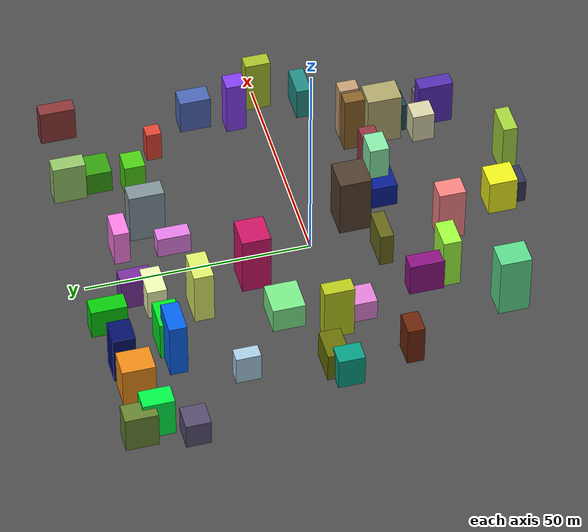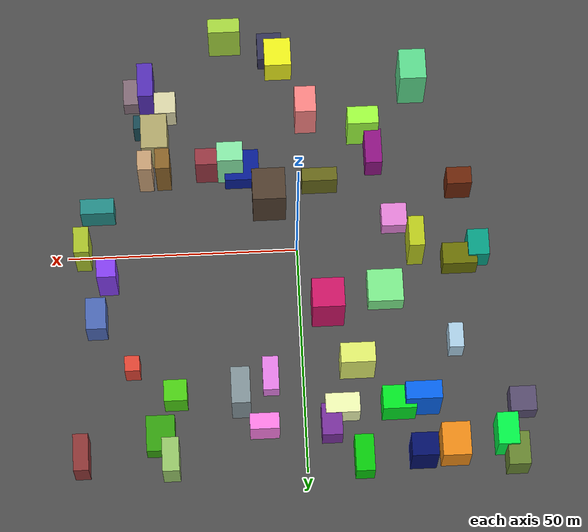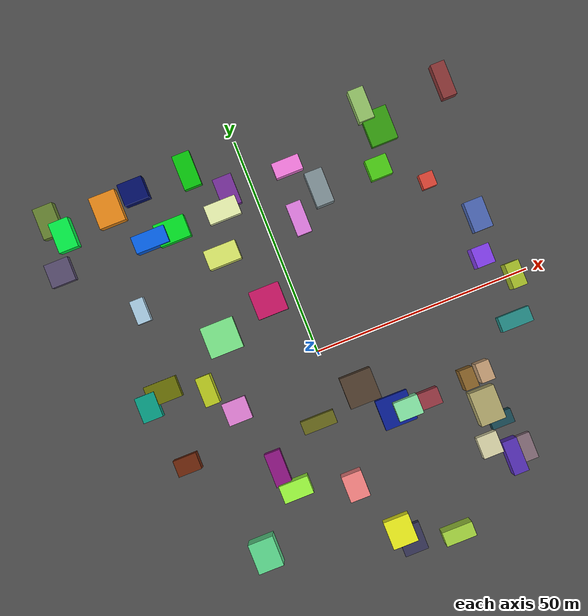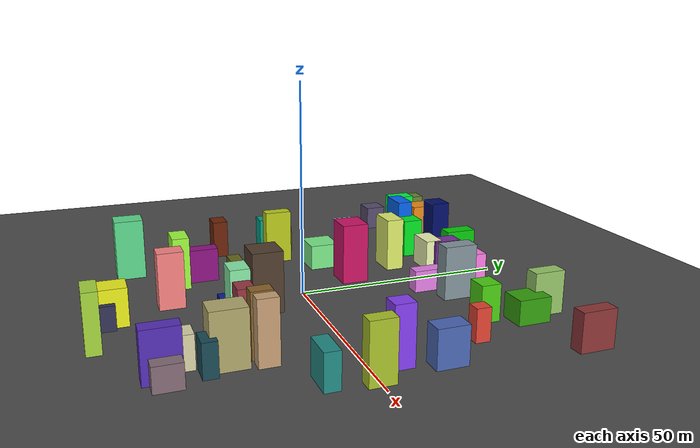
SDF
<?xml version="1.0" ?>
<sdf version="1.8">
  <world name="urban_city">
    <physics name="1ms" type="ignored">
      <max_step_size>0.001</max_step_size>
      <real_time_factor>1.0</real_time_factor>
    </physics>
    <plugin filename="gz-sim-physics-system" name="gz::sim::systems::Physics"></plugin>
    <plugin filename="gz-sim-user-commands-system" name="gz::sim::systems::UserCommands"></plugin>
    <plugin filename="gz-sim-scene-broadcaster-system" name="gz::sim::systems::SceneBroadcaster"></plugin>
    <plugin filename="gz-sim-sensors-system" name="gz::sim::systems::Sensors">
        <render_engine>ogre2</render_engine>
    </plugin>

    <light type="directional" name="sun">
      <cast_shadows>true</cast_shadows>
      <pose>0 0 10 0 0 0</pose>
      <diffuse>0.8 0.8 0.8 1</diffuse>
      <specular>0.2 0.2 0.2 1</specular>
      <direction>-0.5 0.1 -0.9</direction>
    </light>

    <model name="ground_plane">
      <static>true</static>
      <link name="link">
        <collision name="collision">
          <geometry><plane><normal>0 0 1</normal><size>200 200</size></plane></geometry>
          <surface>
            <friction>
              <ode>
                <mu>100</mu>
                <mu2>50</mu2>
              </ode>
            </friction>
          </surface>
        </collision>
        <visual name="visual">
          <geometry><plane><normal>0 0 1</normal><size>200 200</size></plane></geometry>
          <material><ambient>0.3 0.3 0.3 1</ambient><diffuse>0.3 0.3 0.3 1</diffuse></material>
        </visual>
      </link>
    </model>

    <model name="building_0">
      <static>true</static>
      <pose>36.51692773470036 26.25763778981984 3.7656761505585488 0 0 0</pose>
      <link name="link">
        <collision name="collision">
          <geometry><box><size>3.2139395020935138 3.3728820936326533 7.5313523011170975</size></box></geometry>
        </collision>
        <visual name="visual">
          <geometry><box><size>3.2139395020935138 3.3728820936326533 7.5313523011170975</size></box></geometry>
          <material>
            <ambient>0.43112650502192007 0.2584102852 0.17575173589781012 1</ambient>
            <diffuse>0.8811917418396208 0.26678448036901026 0.20276711819678073 1</diffuse>
          </material>
        </visual>
      </link>
    </model>

    <model name="building_1">
      <static>true</static>
      <pose>46.48683743717173 -0.12521765545178454 6.601397617739167 0 0 0</pose>
      <link name="link">
        <collision name="collision">
          <geometry><box><size>3.2581205137002964 5.743415095905071 13.202795235478334</size></box></geometry>
        </collision>
        <visual name="visual">
          <geometry><box><size>3.2581205137002964 5.743415095905071 13.202795235478334</size></box></geometry>
          <material>
            <ambient>0.6504467767603512 0.18006312216125753 0.9953582651852256 1</ambient>
            <diffuse>0.6658889666699421 0.7579633599283002 0.16390935838319765 1</diffuse>
          </material>
        </visual>
      </link>
    </model>

    <model name="building_2">
      <static>true</static>
      <pose>31.816644928775062 -37.21209409731908 5.550062666640159 0 0 0</pose>
      <link name="link">
        <collision name="collision">
          <geometry><box><size>3.4161349848439997 7.754283704934982 11.100125333280317</size></box></geometry>
        </collision>
        <visual name="visual">
          <geometry><box><size>3.4161349848439997 7.754283704934982 11.100125333280317</size></box></geometry>
          <material>
            <ambient>0.2887407733071682 0.2026816243991032 0.10756732111962519 1</ambient>
            <diffuse>0.331119600240141 0.18101751516113607 0.7156723931648483 1</diffuse>
          </material>
        </visual>
      </link>
    </model>

    <model name="building_3">
      <static>true</static>
      <pose>30.95832080295392 41.37552980583766 2.898857163654562 0 0 0</pose>
      <link name="link">
        <collision name="collision">
          <geometry><box><size>6.124531160643588 7.7663861040105475 5.797714327309124</size></box></geometry>
        </collision>
        <visual name="visual">
          <geometry><box><size>6.124531160643588 7.7663861040105475 5.797714327309124</size></box></geometry>
          <material>
            <ambient>0.13719765050055277 0.7137268944144605 0.47482887465026646 1</ambient>
            <diffuse>0.20306755236436347 0.6291177661684508 0.05654759861808745 1</diffuse>
          </material>
        </visual>
      </link>
    </model>

    <model name="building_4">
      <static>true</static>
      <pose>-3.0956385068292036 -30.314628483475104 6.651077340940877 0 0 0</pose>
      <link name="link">
        <collision name="collision">
          <geometry><box><size>4.616777455011381 5.93852055718068 13.302154681881754</size></box></geometry>
        </collision>
        <visual name="visual">
          <geometry><box><size>4.616777455011381 5.93852055718068 13.302154681881754</size></box></geometry>
          <material>
            <ambient>0.7146275493371206 0.7997195667769113 0.33122780747574143 1</ambient>
            <diffuse>0.9758968593255162 0.5144179637621892 0.5127151298535031 1</diffuse>
          </material>
        </visual>
      </link>
    </model>

    <model name="building_5">
      <static>true</static>
      <pose>-17.585690206996077 -20.63603726695312 4.095554436884793 0 0 0</pose>
      <link name="link">
        <collision name="collision">
          <geometry><box><size>3.6640751954455997 7.710889181403439 8.191108873769586</size></box></geometry>
        </collision>
        <visual name="visual">
          <geometry><box><size>3.6640751954455997 7.710889181403439 8.191108873769586</size></box></geometry>
          <material>
            <ambient>0.17581197203489263 0.07797893662576538 0.22241881761593596 1</ambient>
            <diffuse>0.5561741802038538 0.07204214258255515 0.5101486401594477 1</diffuse>
          </material>
        </visual>
      </link>
    </model>

    <model name="building_6">
      <static>true</static>
      <pose>-25.512062142324265 1.0665414230249368 6.729002479072417 0 0 0</pose>
      <link name="link">
        <collision name="collision">
          <geometry><box><size>3.3358576650836955 6.63596300963716 13.458004958144834</size></box></geometry>
        </collision>
        <visual name="visual">
          <geometry><box><size>3.3358576650836955 6.63596300963716 13.458004958144834</size></box></geometry>
          <material>
            <ambient>0.14604924897781113 0.7083139540888532 0.9311147815087948 1</ambient>
            <diffuse>0.7310924713060554 0.7947660536066875 0.11134986379930012 1</diffuse>
          </material>
        </visual>
      </link>
    </model>

    <model name="building_7">
      <static>true</static>
      <pose>7.037615254549998 28.99702445686721 2.5948626095359124 0 0 0</pose>
      <link name="link">
        <collision name="collision">
          <geometry><box><size>3.435416678287762 7.4114032198210475 5.189725219071825</size></box></geometry>
        </collision>
        <visual name="visual">
          <geometry><box><size>3.435416678287762 7.4114032198210475 5.189725219071825</size></box></geometry>
          <material>
            <ambient>0.2815918719220665 0.016968341774733275 0.3173936794105926 1</ambient>
            <diffuse>0.9000809604632302 0.4988950727744319 0.9029706180152033 1</diffuse>
          </material>
        </visual>
      </link>
    </model>

    <model name="building_8">
      <static>true</static>
      <pose>-18.56356547744956 10.720004769738154 3.1157487566012527 0 0 0</pose>
      <link name="link">
        <collision name="collision">
          <geometry><box><size>7.668036806306751 7.213194126151362 6.2314975132025054</size></box></geometry>
        </collision>
        <visual name="visual">
          <geometry><box><size>7.668036806306751 7.213194126151362 6.2314975132025054</size></box></geometry>
          <material>
            <ambient>0.9532728746046482 0.48428437875100216 0.7114677136724796 1</ambient>
            <diffuse>0.48393903401949123 0.9228633946429878 0.5423575782247215 1</diffuse>
          </material>
        </visual>
      </link>
    </model>

    <model name="building_9">
      <static>true</static>
      <pose>-5.536676787989812 40.2960483867063 3.740329850495737 0 0 0</pose>
      <link name="link">
        <collision name="collision">
          <geometry><box><size>4.365026111922521 6.89953080833067 7.480659700991474</size></box></geometry>
        </collision>
        <visual name="visual">
          <geometry><box><size>4.365026111922521 6.89953080833067 7.480659700991474</size></box></geometry>
          <material>
            <ambient>0.14019173478938152 0.8687402929971552 0.6102286204667567 1</ambient>
            <diffuse>0.4714060474723085 0.18557943622473205 0.6167401678314727 1</diffuse>
          </material>
        </visual>
      </link>
    </model>

    <model name="building_10">
      <static>true</static>
      <pose>47.816857133067515 45.48648261406176 4.355274748232704 0 0 0</pose>
      <link name="link">
        <collision name="collision">
          <geometry><box><size>3.2605024898507944 7.9450790937409295 8.710549496465408</size></box></geometry>
        </collision>
        <visual name="visual">
          <geometry><box><size>3.2605024898507944 7.9450790937409295 8.710549496465408</size></box></geometry>
          <material>
            <ambient>0.7772256832640047 0.9875139845145575 0.11381624973064575 1</ambient>
            <diffuse>0.5505953142989704 0.20900829940140397 0.21026810785980765 1</diffuse>
          </material>
        </visual>
      </link>
    </model>

    <model name="building_11">
      <static>true</static>
      <pose>-24.980214052056816 36.398868661626324 6.808972335404068 0 0 0</pose>
      <link name="link">
        <collision name="collision">
          <geometry><box><size>7.672368232316293 3.871156152922945 13.617944670808136</size></box></geometry>
        </collision>
        <visual name="visual">
          <geometry><box><size>7.672368232316293 3.871156152922945 13.617944670808136</size></box></geometry>
          <material>
            <ambient>0.31775571134524316 0.08790047916897759 0.30934689668205806 1</ambient>
            <diffuse>0.021874326756751827 0.3918182555173332 0.9345981544014054 1</diffuse>
          </material>
        </visual>
      </link>
    </model>

    <model name="building_12">
      <static>true</static>
      <pose>-7.976870379308501 36.84113350324229 3.7928781380294616 0 0 0</pose>
      <link name="link">
        <collision name="collision">
          <geometry><box><size>7.359532937198151 4.305891043858305 7.585756276058923</size></box></geometry>
        </collision>
        <visual name="visual">
          <geometry><box><size>7.359532937198151 4.305891043858305 7.585756276058923</size></box></geometry>
          <material>
            <ambient>0.32300837902481117 0.486616801699738 0.3497254224973698 1</ambient>
            <diffuse>0.9388146561917305 0.9753665690926994 0.7021651737558018 1</diffuse>
          </material>
        </visual>
      </link>
    </model>

    <model name="building_13">
      <static>true</static>
      <pose>5.7096226730159785 -10.731415129064935 7.172502171384493 0 0 0</pose>
      <link name="link">
        <collision name="collision">
          <geometry><box><size>7.177256868680132 7.054664763266041 14.345004342768986</size></box></geometry>
        </collision>
        <visual name="visual">
          <geometry><box><size>7.177256868680132 7.054664763266041 14.345004342768986</size></box></geometry>
          <material>
            <ambient>0.8674215640438694 0.5630213674954981 0.674963910902898 1</ambient>
            <diffuse>0.31277645029688617 0.23943144117664028 0.1781395911983592 1</diffuse>
          </material>
        </visual>
      </link>
    </model>

    <model name="building_14">
      <static>true</static>
      <pose>2.4177025069998734 -43.50211812370115 4.407349285956617 0 0 0</pose>
      <link name="link">
        <collision name="collision">
          <geometry><box><size>5.880419472103239 6.391239028573583 8.814698571913233</size></box></geometry>
        </collision>
        <visual name="visual">
          <geometry><box><size>5.880419472103239 6.391239028573583 8.814698571913233</size></box></geometry>
          <material>
            <ambient>0.05901988729995422 0.07124789985918889 0.5211286120281697 1</ambient>
            <diffuse>0.9344076909819072 0.948374462583537 0.10435353655432977 1</diffuse>
          </material>
        </visual>
      </link>
    </model>

    <model name="building_15">
      <static>true</static>
      <pose>32.18914378516506 -28.704534446037798 3.748058350266727 0 0 0</pose>
      <link name="link">
        <collision name="collision">
          <geometry><box><size>5.1356591562897815 3.1533416495649926 7.496116700533454</size></box></geometry>
        </collision>
        <visual name="visual">
          <geometry><box><size>5.1356591562897815 3.1533416495649926 7.496116700533454</size></box></geometry>
          <material>
            <ambient>0.5488768384584033 0.24695742647786223 0.7184972889850114 1</ambient>
            <diffuse>0.0953083236627561 0.2896500831539244 0.3313516775718768 1</diffuse>
          </material>
        </visual>
      </link>
    </model>

    <model name="building_16">
      <static>true</static>
      <pose>4.113766401952269 -46.21290377806129 2.8674696862149625 0 0 0</pose>
      <link name="link">
        <collision name="collision">
          <geometry><box><size>5.450705445254109 6.248810735316757 5.734939372429925</size></box></geometry>
        </collision>
        <visual name="visual">
          <geometry><box><size>5.450705445254109 6.248810735316757 5.734939372429925</size></box></geometry>
          <material>
            <ambient>0.730516431268377 0.27538419892728294 0.04840867648727387 1</ambient>
            <diffuse>0.20283412250728516 0.20197482245312648 0.33446448240177395 1</diffuse>
          </material>
        </visual>
      </link>
    </model>

    <model name="building_17">
      <static>true</static>
      <pose>-19.97604250924735 36.623458670018636 4.842815182782204 0 0 0</pose>
      <link name="link">
        <collision name="collision">
          <geometry><box><size>7.1318969260003335 5.072939778039382 9.685630365564409</size></box></geometry>
        </collision>
        <visual name="visual">
          <geometry><box><size>7.1318969260003335 5.072939778039382 9.685630365564409</size></box></geometry>
          <material>
            <ambient>0.46150299153683283 0.1913298275936769 0.2827598657694024 1</ambient>
            <diffuse>0.008218216844417925 0.9090434024580003 0.1414591520795233 1</diffuse>
          </material>
        </visual>
      </link>
    </model>

    <model name="building_18">
      <static>true</static>
      <pose>-31.457878714120568 46.23470028302262 4.857335681910687 0 0 0</pose>
      <link name="link">
        <collision name="collision">
          <geometry><box><size>6.047288965789736 7.212915864089091 9.714671363821374</size></box></geometry>
        </collision>
        <visual name="visual">
          <geometry><box><size>6.047288965789736 7.212915864089091 9.714671363821374</size></box></geometry>
          <material>
            <ambient>0.09754753651426995 0.8457488971491856 0.44619904548822975 1</ambient>
            <diffuse>0.9303888667819775 0.5451256720604677 0.08934950348015525 1</diffuse>
          </material>
        </visual>
      </link>
    </model>

    <model name="building_19">
      <static>true</static>
      <pose>-21.406620175342972 -5.624537577119071 2.616084884154501 0 0 0</pose>
      <link name="link">
        <collision name="collision">
          <geometry><box><size>5.523660271489929 5.171804195940439 5.232169768309002</size></box></geometry>
        </collision>
        <visual name="visual">
          <geometry><box><size>5.523660271489929 5.171804195940439 5.232169768309002</size></box></geometry>
          <material>
            <ambient>0.8287214968017286 0.08197594238954609 0.2824849264151915 1</ambient>
            <diffuse>0.8940439505045581 0.5067035540113948 0.8441405394499174 1</diffuse>
          </material>
        </visual>
      </link>
    </model>

    <model name="building_20">
      <static>true</static>
      <pose>28.513166934022692 -17.526736346363116 7.094634966012099 0 0 0</pose>
      <link name="link">
        <collision name="collision">
          <geometry><box><size>3.1291915056570314 4.599750188167283 14.189269932024198</size></box></geometry>
        </collision>
        <visual name="visual">
          <geometry><box><size>3.1291915056570314 4.599750188167283 14.189269932024198</size></box></geometry>
          <material>
            <ambient>0.9157161326781036 0.15707070777212195 0.13159199452175407 1</ambient>
            <diffuse>0.545192439015435 0.39005909097144764 0.15879649745735502 1</diffuse>
          </material>
        </visual>
      </link>
    </model>

    <model name="building_21">
      <static>true</static>
      <pose>34.06316895557043 -36.65391243922434 2.7015997281474755 0 0 0</pose>
      <link name="link">
        <collision name="collision">
          <geometry><box><size>5.577284601975439 5.975517051528559 5.403199456294951</size></box></geometry>
        </collision>
        <visual name="visual">
          <geometry><box><size>5.577284601975439 5.975517051528559 5.403199456294951</size></box></geometry>
          <material>
            <ambient>0.8027375859243884 0.2794756971075665 0.7674983328978794 1</ambient>
            <diffuse>0.5141010570085053 0.417800017907771 0.4646129247992006 1</diffuse>
          </material>
        </visual>
      </link>
    </model>

    <model name="building_22">
      <static>true</static>
      <pose>8.793979727741721 40.44964359724523 4.430333291106461 0 0 0</pose>
      <link name="link">
        <collision name="collision">
          <geometry><box><size>6.29903042100569 3.4792675326864178 8.860666582212922</size></box></geometry>
        </collision>
        <visual name="visual">
          <geometry><box><size>6.29903042100569 3.4792675326864178 8.860666582212922</size></box></geometry>
          <material>
            <ambient>0.4540251444054121 0.3697772992302367 0.39910317441657317 1</ambient>
            <diffuse>0.9921833807224764 0.49556032133946526 0.8987541254964693 1</diffuse>
          </material>
        </visual>
      </link>
    </model>

    <model name="building_23">
      <static>true</static>
      <pose>-46.456450327911945 37.2696236856947 3.129148701612876 0 0 0</pose>
      <link name="link">
        <collision name="collision">
          <geometry><box><size>5.606583352596828 5.412456516669466 6.258297403225752</size></box></geometry>
        </collision>
        <visual name="visual">
          <geometry><box><size>5.606583352596828 5.412456516669466 6.258297403225752</size></box></geometry>
          <material>
            <ambient>0.11258463890701165 0.9825289079053527 0.705801794267372 1</ambient>
            <diffuse>0.33881447882579396 0.2961121107023743 0.43164021861039137 1</diffuse>
          </material>
        </visual>
      </link>
    </model>

    <model name="building_24">
      <static>true</static>
      <pose>-39.14775550641249 2.3052007238813843 3.891723349020407 0 0 0</pose>
      <link name="link">
        <collision name="collision">
          <geometry><box><size>4.573570447553216 5.816626507411702 7.783446698040814</size></box></geometry>
        </collision>
        <visual name="visual">
          <geometry><box><size>4.573570447553216 5.816626507411702 7.783446698040814</size></box></geometry>
          <material>
            <ambient>0.05482021279406757 0.693318053861112 0.7787030196529064 1</ambient>
            <diffuse>0.022315532968573804 0.6223232805716157 0.51838527715689 1</diffuse>
          </material>
        </visual>
      </link>
    </model>

    <model name="building_25">
      <static>true</static>
      <pose>17.672944812808453 -18.534791633195603 5.755361825965066 0 0 0</pose>
      <link name="link">
        <collision name="collision">
          <geometry><box><size>7.520254305228712 3.7112275960852177 11.510723651930132</size></box></geometry>
        </collision>
        <visual name="visual">
          <geometry><box><size>7.520254305228712 3.7112275960852177 11.510723651930132</size></box></geometry>
          <material>
            <ambient>0.8243814004538755 0.6054426376111669 0.6545138783728307 1</ambient>
            <diffuse>0.5934286982381269 0.21283126746584624 0.2601270195083615 1</diffuse>
          </material>
        </visual>
      </link>
    </model>

    <model name="building_26">
      <static>true</static>
      <pose>-42.49564301555123 44.474558768066046 4.884566739177114 0 0 0</pose>
      <link name="link">
        <collision name="collision">
          <geometry><box><size>4.520408445484836 6.894082946851789 9.769133478354227</size></box></geometry>
        </collision>
        <visual name="visual">
          <geometry><box><size>4.520408445484836 6.894082946851789 9.769133478354227</size></box></geometry>
          <material>
            <ambient>0.026036089368297044 0.3244265832232127 0.17507972579730346 1</ambient>
            <diffuse>0.00478453550646174 0.9595208398358401 0.278237320447693 1</diffuse>
          </material>
        </visual>
      </link>
    </model>

    <model name="building_27">
      <static>true</static>
      <pose>41.29221995966472 6.327266251472622 6.681175745460763 0 0 0</pose>
      <link name="link">
        <collision name="collision">
          <geometry><box><size>4.134731074147929 4.487530290410689 13.362351490921526</size></box></geometry>
        </collision>
        <visual name="visual">
          <geometry><box><size>4.134731074147929 4.487530290410689 13.362351490921526</size></box></geometry>
          <material>
            <ambient>0.11981890630602465 0.14742219278655355 0.9368543530934534 1</ambient>
            <diffuse>0.5205143268178366 0.2443959514515439 0.9445802889780709 1</diffuse>
          </material>
        </visual>
      </link>
    </model>

    <model name="building_28">
      <static>true</static>
      <pose>-5.493141279572413 -14.528553508455111 4.179626559239042 0 0 0</pose>
      <link name="link">
        <collision name="collision">
          <geometry><box><size>7.69000523683813 3.000395011309803 8.359253118478083</size></box></geometry>
        </collision>
        <visual name="visual">
          <geometry><box><size>7.69000523683813 3.000395011309803 8.359253118478083</size></box></geometry>
          <material>
            <ambient>0.6484595412885888 0.5307123099449869 0.5011549881093516 1</ambient>
            <diffuse>0.40223001735906705 0.4052139333473195 0.09810005286688839 1</diffuse>
          </material>
        </visual>
      </link>
    </model>

    <model name="building_29">
      <static>true</static>
      <pose>30.172842210120194 -24.571947645868708 6.274726449987129 0 0 0</pose>
      <link name="link">
        <collision name="collision">
          <geometry><box><size>5.731911598068838 7.738986133992966 12.549452899974257</size></box></geometry>
        </collision>
        <visual name="visual">
          <geometry><box><size>5.731911598068838 7.738986133992966 12.549452899974257</size></box></geometry>
          <material>
            <ambient>0.9898026563491769 0.03778349800831726 0.6639454381087573 1</ambient>
            <diffuse>0.6936780005024326 0.6567076634911563 0.4239868567913515 1</diffuse>
          </material>
        </visual>
      </link>
    </model>

    <model name="building_30">
      <static>true</static>
      <pose>-24.626885854141733 47.702432071480374 6.046293681718057 0 0 0</pose>
      <link name="link">
        <collision name="collision">
          <geometry><box><size>5.683751215041228 4.953064305611964 12.092587363436113</size></box></geometry>
        </collision>
        <visual name="visual">
          <geometry><box><size>5.683751215041228 4.953064305611964 12.092587363436113</size></box></geometry>
          <material>
            <ambient>0.459162693097775 0.8033768955089725 0.2361574836481467 1</ambient>
            <diffuse>0.007353803103432477 0.05452836650841464 0.40673998708777714 1</diffuse>
          </material>
        </visual>
      </link>
    </model>

    <model name="building_31">
      <static>true</static>
      <pose>-15.49301045823217 -26.234311885713645 6.370264382524811 0 0 0</pose>
      <link name="link">
        <collision name="collision">
          <geometry><box><size>6.751744594411323 4.004180845012394 12.740528765049621</size></box></geometry>
        </collision>
        <visual name="visual">
          <geometry><box><size>6.751744594411323 4.004180845012394 12.740528765049621</size></box></geometry>
          <material>
            <ambient>0.4245931776952442 0.08544405680782208 0.7677571737559878 1</ambient>
            <diffuse>0.6238641512258356 0.9996243806395502 0.24574973642621367 1</diffuse>
          </material>
        </visual>
      </link>
    </model>

    <model name="building_32">
      <static>true</static>
      <pose>14.071560568321289 -48.32710513320454 6.6808842749873785 0 0 0</pose>
      <link name="link">
        <collision name="collision">
          <geometry><box><size>6.987506997007825 3.232219570320709 13.361768549974757</size></box></geometry>
        </collision>
        <visual name="visual">
          <geometry><box><size>6.987506997007825 3.232219570320709 13.361768549974757</size></box></geometry>
          <material>
            <ambient>0.0634053946507197 0.8063665048485192 0.9638450844973487 1</ambient>
            <diffuse>0.6517888720041338 0.8407294765079008 0.24392904804967663 1</diffuse>
          </material>
        </visual>
      </link>
    </model>

    <model name="building_33">
      <static>true</static>
      <pose>43.9712043663491 15.087432499026605 4.273415838788003 0 0 0</pose>
      <link name="link">
        <collision name="collision">
          <geometry><box><size>4.364836711873394 6.983851521428451 8.546831677576005</size></box></geometry>
        </collision>
        <visual name="visual">
          <geometry><box><size>4.364836711873394 6.983851521428451 8.546831677576005</size></box></geometry>
          <material>
            <ambient>0.44330614175712635 0.5690514549400703 0.36755398183457244 1</ambient>
            <diffuse>0.29520073374547506 0.40618666099936684 0.711957467455292 1</diffuse>
          </material>
        </visual>
      </link>
    </model>

    <model name="building_34">
      <static>true</static>
      <pose>27.72454389991414 -33.08402022685888 3.704512100384671 0 0 0</pose>
      <link name="link">
        <collision name="collision">
          <geometry><box><size>4.67141331551486 4.968191309956849 7.409024200769342</size></box></geometry>
        </collision>
        <visual name="visual">
          <geometry><box><size>4.67141331551486 4.968191309956849 7.409024200769342</size></box></geometry>
          <material>
            <ambient>0.22918049964350773 0.9385861972799513 0.38451453894866294 1</ambient>
            <diffuse>0.8557532614975979 0.8366221627106922 0.6627500716645094 1</diffuse>
          </material>
        </visual>
      </link>
    </model>

    <model name="building_35">
      <static>true</static>
      <pose>43.15341478991246 -9.360459771219546 3.971992103032134 0 0 0</pose>
      <link name="link">
        <collision name="collision">
          <geometry><box><size>7.3039980772040485 3.413370689184785 7.943984206064268</size></box></geometry>
        </collision>
        <visual name="visual">
          <geometry><box><size>7.3039980772040485 3.413370689184785 7.943984206064268</size></box></geometry>
          <material>
            <ambient>0.2267164275213741 0.14582456696913304 0.7221956006986282 1</ambient>
            <diffuse>0.13565063771943742 0.54696063604119 0.5280946181476694 1</diffuse>
          </material>
        </visual>
      </link>
    </model>

    <model name="building_36">
      <static>true</static>
      <pose>11.37822358864068 -18.381185459365025 2.863451369925343 0 0 0</pose>
      <link name="link">
        <collision name="collision">
          <geometry><box><size>7.486322818041276 6.929983013063127 5.726902739850686</size></box></geometry>
        </collision>
        <visual name="visual">
          <geometry><box><size>7.486322818041276 6.929983013063127 5.726902739850686</size></box></geometry>
          <material>
            <ambient>0.02702226028676702 0.9382477150624969 0.34067185398948696 1</ambient>
            <diffuse>0.030538065438210693 0.11190422310458203 0.5811332691420964 1</diffuse>
          </material>
        </visual>
      </link>
    </model>

    <model name="building_37">
      <static>true</static>
      <pose>13.854752754563357 -18.64170450767225 6.969638302410553 0 0 0</pose>
      <link name="link">
        <collision name="collision">
          <geometry><box><size>5.625896030490585 4.349255501294488 13.939276604821107</size></box></geometry>
        </collision>
        <visual name="visual">
          <geometry><box><size>5.625896030490585 4.349255501294488 13.939276604821107</size></box></geometry>
          <material>
            <ambient>0.07196927333825331 0.25961180013042606 0.4066494251584629 1</ambient>
            <diffuse>0.5301041968565401 0.9176266602627609 0.6577200758169277 1</diffuse>
          </material>
        </visual>
      </link>
    </model>

    <model name="building_38">
      <static>true</static>
      <pose>32.367857657060014 -17.334319144355582 7.066124815204196 0 0 0</pose>
      <link name="link">
        <collision name="collision">
          <geometry><box><size>3.1337802081647883 4.458608098323439 14.132249630408392</size></box></geometry>
        </collision>
        <visual name="visual">
          <geometry><box><size>3.1337802081647883 4.458608098323439 14.132249630408392</size></box></geometry>
          <material>
            <ambient>0.12320077975981025 0.7338425373458577 0.9548108419955398 1</ambient>
            <diffuse>0.7780813005330546 0.6242692479385997 0.4596657037589972 1</diffuse>
          </material>
        </visual>
      </link>
    </model>

    <model name="building_39">
      <static>true</static>
      <pose>-35.797264542620645 -12.511689383197975 4.7780226461156685 0 0 0</pose>
      <link name="link">
        <collision name="collision">
          <geometry><box><size>5.391074471918918 3.776013797752255 9.556045292231337</size></box></geometry>
        </collision>
        <visual name="visual">
          <geometry><box><size>5.391074471918918 3.776013797752255 9.556045292231337</size></box></geometry>
          <material>
            <ambient>0.24381208419081202 0.38988357946998786 0.834462616500488 1</ambient>
            <diffuse>0.42222184071641544 0.14052736326670268 0.03615432850117917 1</diffuse>
          </material>
        </visual>
      </link>
    </model>

    <model name="building_40">
      <static>true</static>
      <pose>-5.901837115670247 14.422936602408669 7.32529555991619 0 0 0</pose>
      <link name="link">
        <collision name="collision">
          <geometry><box><size>6.921537891287344 6.4101489601157455 14.65059111983238</size></box></geometry>
        </collision>
        <visual name="visual">
          <geometry><box><size>6.921537891287344 6.4101489601157455 14.65059111983238</size></box></geometry>
          <material>
            <ambient>0.25164930443222455 0.4876141818973715 0.36682683899251345 1</ambient>
            <diffuse>0.8032638511884217 0.07728970738610463 0.3994542808251522 1</diffuse>
          </material>
        </visual>
      </link>
    </model>

    <model name="building_41">
      <static>true</static>
      <pose>-11.570107853592326 27.473274065926446 6.560650925291952 0 0 0</pose>
      <link name="link">
        <collision name="collision">
          <geometry><box><size>7.395514472210339 4.341402866416556 13.121301850583905</size></box></geometry>
        </collision>
        <visual name="visual">
          <geometry><box><size>7.395514472210339 4.341402866416556 13.121301850583905</size></box></geometry>
          <material>
            <ambient>0.678536283550275 0.3367884427587188 0.8735718304494855 1</ambient>
            <diffuse>0.8806354492373707 0.9355815930342785 0.4243650484677691 1</diffuse>
          </material>
        </visual>
      </link>
    </model>

    <model name="building_42">
      <static>true</static>
      <pose>-44.574474574122746 48.620604803216466 4.443764941701646 0 0 0</pose>
      <link name="link">
        <collision name="collision">
          <geometry><box><size>4.607685938182209 7.138556527272634 8.887529883403293</size></box></geometry>
        </collision>
        <visual name="visual">
          <geometry><box><size>4.607685938182209 7.138556527272634 8.887529883403293</size></box></geometry>
          <material>
            <ambient>0.18359269226773 0.31353413168533595 0.25131971888203575 1</ambient>
            <diffuse>0.40189644064951824 0.5218469619159345 0.1894348887042362 1</diffuse>
          </material>
        </visual>
      </link>
    </model>

    <model name="building_43">
      <static>true</static>
      <pose>28.874074121427697 47.0578396933322 5.005298407615429 0 0 0</pose>
      <link name="link">
        <collision name="collision">
          <geometry><box><size>3.58764891615555 7.337251626284533 10.010596815230858</size></box></geometry>
        </collision>
        <visual name="visual">
          <geometry><box><size>3.58764891615555 7.337251626284533 10.010596815230858</size></box></geometry>
          <material>
            <ambient>0.6782720002313548 0.47102636733653747 0.2549759966075906 1</ambient>
            <diffuse>0.5894617756560955 0.7769839572788996 0.40783165378000397 1</diffuse>
          </material>
        </visual>
      </link>
    </model>

    <model name="building_44">
      <static>true</static>
      <pose>13.566822872185334 33.40292994875341 6.400167880301827 0 0 0</pose>
      <link name="link">
        <collision name="collision">
          <geometry><box><size>4.042719600593031 7.881316671595095 12.800335760603653</size></box></geometry>
        </collision>
        <visual name="visual">
          <geometry><box><size>4.042719600593031 7.881316671595095 12.800335760603653</size></box></geometry>
          <material>
            <ambient>0.19898704871468897 0.10964179374459415 0.31521282077567414 1</ambient>
            <diffuse>0.5099846084595618 0.5797135881627541 0.6029348823360174 1</diffuse>
          </material>
        </visual>
      </link>
    </model>

    <model name="building_45">
      <static>true</static>
      <pose>-33.05951331846714 22.797776353296896 3.5310059352746053 0 0 0</pose>
      <link name="link">
        <collision name="collision">
          <geometry><box><size>3.1282201769698426 5.446308705203222 7.0620118705492105</size></box></geometry>
        </collision>
        <visual name="visual">
          <geometry><box><size>3.1282201769698426 5.446308705203222 7.0620118705492105</size></box></geometry>
          <material>
            <ambient>0.939036611119969 0.34440770267773024 0.9880026056923034 1</ambient>
            <diffuse>0.6699821827698531 0.810659041175208 0.9005286859816031 1</diffuse>
          </material>
        </visual>
      </link>
    </model>

    <model name="building_46">
      <static>true</static>
      <pose>27.46879165234344 32.87069890482985 4.295692039133163 0 0 0</pose>
      <link name="link">
        <collision name="collision">
          <geometry><box><size>4.9378406521941525 4.651964336619908 8.591384078266326</size></box></geometry>
        </collision>
        <visual name="visual">
          <geometry><box><size>4.9378406521941525 4.651964336619908 8.591384078266326</size></box></geometry>
          <material>
            <ambient>0.6118462587982902 0.3911133440360447 0.7532608589450149 1</ambient>
            <diffuse>0.29533782022841837 0.8134182949127317 0.07253288278091585 1</diffuse>
          </material>
        </visual>
      </link>
    </model>

    <model name="building_47">
      <static>true</static>
      <pose>-26.858659506534167 -36.93154638808825 7.394512830490186 0 0 0</pose>
      <link name="link">
        <collision name="collision">
          <geometry><box><size>5.795908422202813 6.849640965027039 14.789025660980371</size></box></geometry>
        </collision>
        <visual name="visual">
          <geometry><box><size>5.795908422202813 6.849640965027039 14.789025660980371</size></box></geometry>
          <material>
            <ambient>0.13349209853468558 0.8985324992260275 0.5783426621713772 1</ambient>
            <diffuse>0.3602376606532838 0.8565006636641013 0.553080871138552 1</diffuse>
          </material>
        </visual>
      </link>
    </model>

    <model name="building_48">
      <static>true</static>
      <pose>-12.108476296118077 47.84874848629535 3.708931295432434 0 0 0</pose>
      <link name="link">
        <collision name="collision">
          <geometry><box><size>4.0364346283066075 7.941228171631005 7.417862590864868</size></box></geometry>
        </collision>
        <visual name="visual">
          <geometry><box><size>4.0364346283066075 7.941228171631005 7.417862590864868</size></box></geometry>
          <material>
            <ambient>0.14423995454975536 0.5420117501691275 0.7545223324669608 1</ambient>
            <diffuse>0.03090605976743921 0.7959266759269898 0.04424522272634579 1</diffuse>
          </material>
        </visual>
      </link>
    </model>

    <model name="building_49">
      <static>true</static>
      <pose>-35.01782227784743 4.414496169406746 3.52290525034791 0 0 0</pose>
      <link name="link">
        <collision name="collision">
          <geometry><box><size>7.4682485106156165 4.772909112370396 7.04581050069582</size></box></geometry>
        </collision>
        <visual name="visual">
          <geometry><box><size>7.4682485106156165 4.772909112370396 7.04581050069582</size></box></geometry>
          <material>
            <ambient>0.20512913610627304 0.6743983287281294 0.4483379657459955 1</ambient>
            <diffuse>0.41511508859724244 0.43807645919448024 0.017629513888755888 1</diffuse>
          </material>
        </visual>
      </link>
    </model>

  </world>
</sdf>
